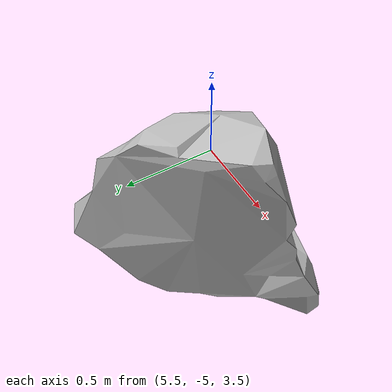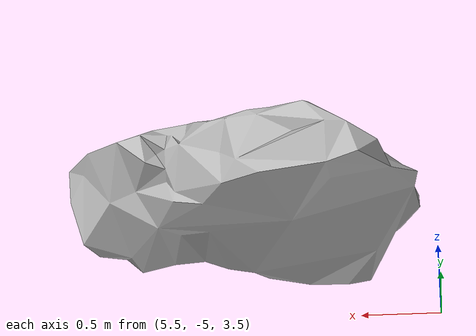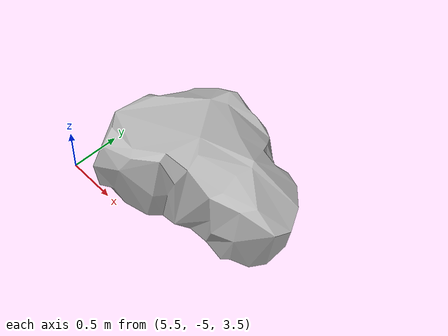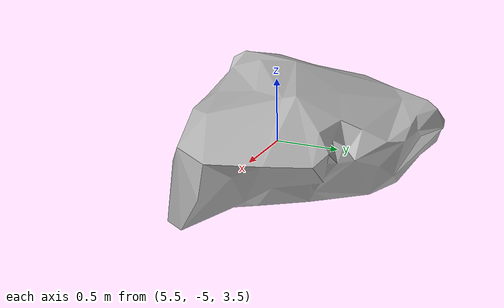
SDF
<sdf version="1.9">
  <model name="rocks">
    <static>true</static>
    <link name="rocks_link">
      <visual name="rocks_visual">
        <plugin filename="gz-sim-label-system" name="gz::sim::systems::Label">
          <label>7</label>
        </plugin>
        <geometry>
          <mesh>
            <uri>meshes/rocks/model.dae</uri>
          </mesh>
        </geometry>
      </visual>
      <collision name="rocks_collision">
        <geometry>
          <mesh>
            <uri>meshes/rocks/model.dae</uri>
          </mesh>
        </geometry>
      </collision>
    </link>
    <pose>0 0 0 0 0 0</pose>
  </model>
</sdf>
